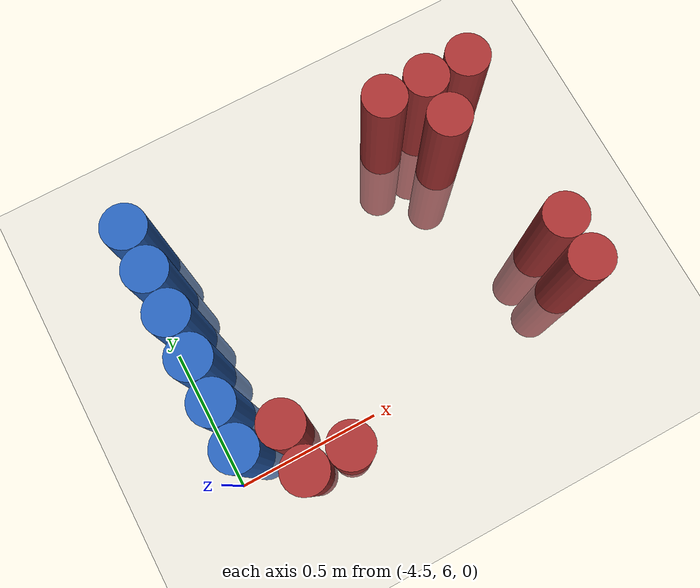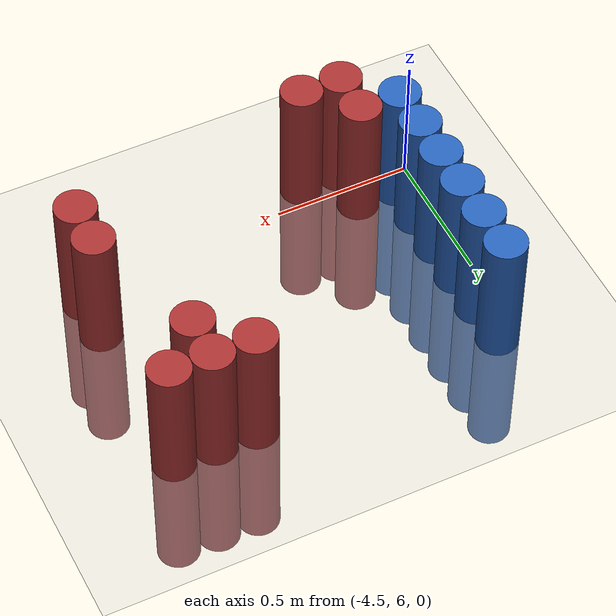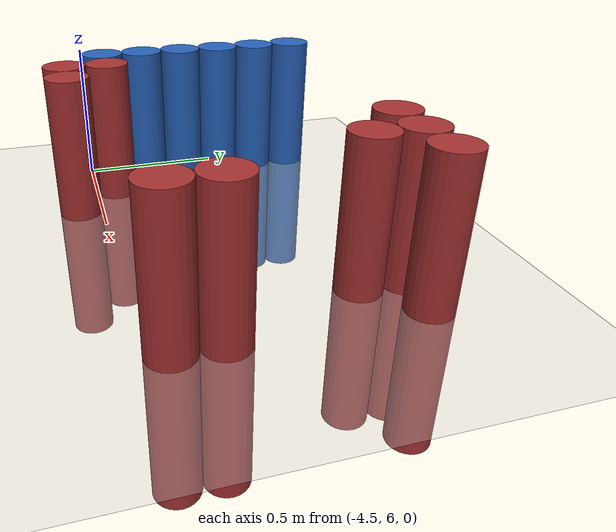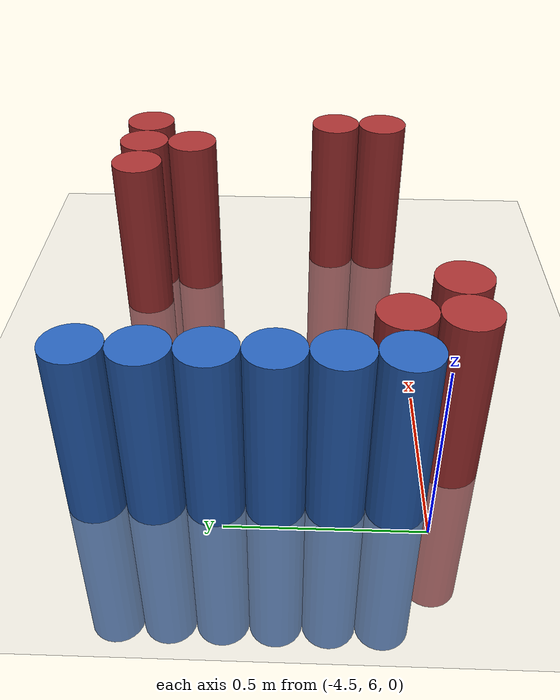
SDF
<sdf version="1.6">
 <world name="default">
  <model name="ground_plane">
   <static>1</static>
   <link name="link">
    <collision name="collision">
     <geometry><plane><normal>0 0 1</normal><size>100 100</size></plane></geometry>
     <surface><friction><ode><mu>100</mu><mu2>50</mu2></ode></friction></surface>
    </collision>
    <visual name="visual">
     <cast_shadows>0</cast_shadows>
     <geometry><plane><normal>0 0 1</normal><size>100 100</size></plane></geometry>
     <material>
      <script><uri>file://media/materials/scripts/gazebo.material</uri><name>Gazebo/Grey</name></script>
     </material>
    </visual>
   </link>
  </model>
  <model name="unit_cylinder_102">
   <static>1</static>
   <pose>-4.425000 6.075000 0.000000 0.000000 0.000000 0.000000</pose>
   <link name="link">
    <inertial>
     <mass>1</mass>
     <inertia><ixx>0.145833</ixx><ixy>0</ixy><ixz>0</ixz><iyy>0.145833</iyy><iyz>0</iyz><izz>0.125</izz></inertia>
    </inertial>
    <collision name="collision">
     <geometry><cylinder><radius>0.075000</radius><length>1</length></cylinder></geometry>
    </collision>
    <visual name="visual">
     <geometry><cylinder><radius>0.075000</radius><length>1</length></cylinder></geometry>
     <material>
      <ambient>0.152000 0.379000 0.720000 1</ambient>
      <diffuse>0.152000 0.379000 0.720000 1</diffuse>
     </material>
     <material>
      <script><name>Gazebo/Grey</name><uri>file://media/materials/scripts/gazebo.material</uri></script>
     </material>
    </visual>
   </link>
  </model>
  <model name="unit_cylinder_103">
   <static>1</static>
   <pose>-4.425000 6.225000 0.000000 0.000000 0.000000 0.000000</pose>
   <link name="link">
    <inertial>
     <mass>1</mass>
     <inertia><ixx>0.145833</ixx><ixy>0</ixy><ixz>0</ixz><iyy>0.145833</iyy><iyz>0</iyz><izz>0.125</izz></inertia>
    </inertial>
    <collision name="collision">
     <geometry><cylinder><radius>0.075000</radius><length>1</length></cylinder></geometry>
    </collision>
    <visual name="visual">
     <geometry><cylinder><radius>0.075000</radius><length>1</length></cylinder></geometry>
     <material>
      <ambient>0.152000 0.379000 0.720000 1</ambient>
      <diffuse>0.152000 0.379000 0.720000 1</diffuse>
     </material>
     <material>
      <script><name>Gazebo/Grey</name><uri>file://media/materials/scripts/gazebo.material</uri></script>
     </material>
    </visual>
   </link>
  </model>
  <model name="unit_cylinder_104">
   <static>1</static>
   <pose>-4.425000 6.375000 0.000000 0.000000 0.000000 0.000000</pose>
   <link name="link">
    <inertial>
     <mass>1</mass>
     <inertia><ixx>0.145833</ixx><ixy>0</ixy><ixz>0</ixz><iyy>0.145833</iyy><iyz>0</iyz><izz>0.125</izz></inertia>
    </inertial>
    <collision name="collision">
     <geometry><cylinder><radius>0.075000</radius><length>1</length></cylinder></geometry>
    </collision>
    <visual name="visual">
     <geometry><cylinder><radius>0.075000</radius><length>1</length></cylinder></geometry>
     <material>
      <ambient>0.152000 0.379000 0.720000 1</ambient>
      <diffuse>0.152000 0.379000 0.720000 1</diffuse>
     </material>
     <material>
      <script><name>Gazebo/Grey</name><uri>file://media/materials/scripts/gazebo.material</uri></script>
     </material>
    </visual>
   </link>
  </model>
  <model name="unit_cylinder_105">
   <static>1</static>
   <pose>-4.425000 6.525000 0.000000 0.000000 0.000000 0.000000</pose>
   <link name="link">
    <inertial>
     <mass>1</mass>
     <inertia><ixx>0.145833</ixx><ixy>0</ixy><ixz>0</ixz><iyy>0.145833</iyy><iyz>0</iyz><izz>0.125</izz></inertia>
    </inertial>
    <collision name="collision">
     <geometry><cylinder><radius>0.075000</radius><length>1</length></cylinder></geometry>
    </collision>
    <visual name="visual">
     <geometry><cylinder><radius>0.075000</radius><length>1</length></cylinder></geometry>
     <material>
      <ambient>0.152000 0.379000 0.720000 1</ambient>
      <diffuse>0.152000 0.379000 0.720000 1</diffuse>
     </material>
     <material>
      <script><name>Gazebo/Grey</name><uri>file://media/materials/scripts/gazebo.material</uri></script>
     </material>
    </visual>
   </link>
  </model>
  <model name="unit_cylinder_106">
   <static>1</static>
   <pose>-4.425000 6.675000 0.000000 0.000000 0.000000 0.000000</pose>
   <link name="link">
    <inertial>
     <mass>1</mass>
     <inertia><ixx>0.145833</ixx><ixy>0</ixy><ixz>0</ixz><iyy>0.145833</iyy><iyz>0</iyz><izz>0.125</izz></inertia>
    </inertial>
    <collision name="collision">
     <geometry><cylinder><radius>0.075000</radius><length>1</length></cylinder></geometry>
    </collision>
    <visual name="visual">
     <geometry><cylinder><radius>0.075000</radius><length>1</length></cylinder></geometry>
     <material>
      <ambient>0.152000 0.379000 0.720000 1</ambient>
      <diffuse>0.152000 0.379000 0.720000 1</diffuse>
     </material>
     <material>
      <script><name>Gazebo/Grey</name><uri>file://media/materials/scripts/gazebo.material</uri></script>
     </material>
    </visual>
   </link>
  </model>
  <model name="unit_cylinder_107">
   <static>1</static>
   <pose>-4.425000 6.825000 0.000000 0.000000 0.000000 0.000000</pose>
   <link name="link">
    <inertial>
     <mass>1</mass>
     <inertia><ixx>0.145833</ixx><ixy>0</ixy><ixz>0</ixz><iyy>0.145833</iyy><iyz>0</iyz><izz>0.125</izz></inertia>
    </inertial>
    <collision name="collision">
     <geometry><cylinder><radius>0.075000</radius><length>1</length></cylinder></geometry>
    </collision>
    <visual name="visual">
     <geometry><cylinder><radius>0.075000</radius><length>1</length></cylinder></geometry>
     <material>
      <ambient>0.152000 0.379000 0.720000 1</ambient>
      <diffuse>0.152000 0.379000 0.720000 1</diffuse>
     </material>
     <material>
      <script><name>Gazebo/Grey</name><uri>file://media/materials/scripts/gazebo.material</uri></script>
     </material>
    </visual>
   </link>
  </model>
  <model name="unit_cylinder_128">
   <static>1</static>
   <pose>-4.275000 5.925000 0.000000 0.000000 0.000000 0.000000</pose>
   <link name="link">
    <inertial>
     <mass>1</mass>
     <inertia><ixx>0.145833</ixx><ixy>0</ixy><ixz>0</ixz><iyy>0.145833</iyy><iyz>0</iyz><izz>0.125</izz></inertia>
    </inertial>
    <collision name="collision">
     <geometry><cylinder><radius>0.075000</radius><length>1</length></cylinder></geometry>
    </collision>
    <visual name="visual">
     <geometry><cylinder><radius>0.075000</radius><length>1</length></cylinder></geometry>
     <material>
      <ambient>0.648000 0.192000 0.192000 1</ambient>
      <diffuse>0.648000 0.192000 0.192000 1</diffuse>
     </material>
     <material>
      <script><name>Gazebo/Grey</name><uri>file://media/materials/scripts/gazebo.material</uri></script>
     </material>
    </visual>
   </link>
  </model>
  <model name="unit_cylinder_129">
   <static>1</static>
   <pose>-4.275000 6.075000 0.000000 0.000000 0.000000 0.000000</pose>
   <link name="link">
    <inertial>
     <mass>1</mass>
     <inertia><ixx>0.145833</ixx><ixy>0</ixy><ixz>0</ixz><iyy>0.145833</iyy><iyz>0</iyz><izz>0.125</izz></inertia>
    </inertial>
    <collision name="collision">
     <geometry><cylinder><radius>0.075000</radius><length>1</length></cylinder></geometry>
    </collision>
    <visual name="visual">
     <geometry><cylinder><radius>0.075000</radius><length>1</length></cylinder></geometry>
     <material>
      <ambient>0.648000 0.192000 0.192000 1</ambient>
      <diffuse>0.648000 0.192000 0.192000 1</diffuse>
     </material>
     <material>
      <script><name>Gazebo/Grey</name><uri>file://media/materials/scripts/gazebo.material</uri></script>
     </material>
    </visual>
   </link>
  </model>
  <model name="unit_cylinder_136">
   <static>1</static>
   <pose>-4.125000 5.925000 0.000000 0.000000 0.000000 0.000000</pose>
   <link name="link">
    <inertial>
     <mass>1</mass>
     <inertia><ixx>0.145833</ixx><ixy>0</ixy><ixz>0</ixz><iyy>0.145833</iyy><iyz>0</iyz><izz>0.125</izz></inertia>
    </inertial>
    <collision name="collision">
     <geometry><cylinder><radius>0.075000</radius><length>1</length></cylinder></geometry>
    </collision>
    <visual name="visual">
     <geometry><cylinder><radius>0.075000</radius><length>1</length></cylinder></geometry>
     <material>
      <ambient>0.648000 0.192000 0.192000 1</ambient>
      <diffuse>0.648000 0.192000 0.192000 1</diffuse>
     </material>
     <material>
      <script><name>Gazebo/Grey</name><uri>file://media/materials/scripts/gazebo.material</uri></script>
     </material>
    </visual>
   </link>
  </model>
  <model name="unit_cylinder_157">
   <static>1</static>
   <pose>-3.525000 6.825000 0.000000 0.000000 0.000000 0.000000</pose>
   <link name="link">
    <inertial>
     <mass>1</mass>
     <inertia><ixx>0.145833</ixx><ixy>0</ixy><ixz>0</ixz><iyy>0.145833</iyy><iyz>0</iyz><izz>0.125</izz></inertia>
    </inertial>
    <collision name="collision">
     <geometry><cylinder><radius>0.075000</radius><length>1</length></cylinder></geometry>
    </collision>
    <visual name="visual">
     <geometry><cylinder><radius>0.075000</radius><length>1</length></cylinder></geometry>
     <material>
      <ambient>0.648000 0.192000 0.192000 1</ambient>
      <diffuse>0.648000 0.192000 0.192000 1</diffuse>
     </material>
     <material>
      <script><name>Gazebo/Grey</name><uri>file://media/materials/scripts/gazebo.material</uri></script>
     </material>
    </visual>
   </link>
  </model>
  <model name="unit_cylinder_165">
   <static>1</static>
   <pose>-3.375000 6.675000 0.000000 0.000000 0.000000 0.000000</pose>
   <link name="link">
    <inertial>
     <mass>1</mass>
     <inertia><ixx>0.145833</ixx><ixy>0</ixy><ixz>0</ixz><iyy>0.145833</iyy><iyz>0</iyz><izz>0.125</izz></inertia>
    </inertial>
    <collision name="collision">
     <geometry><cylinder><radius>0.075000</radius><length>1</length></cylinder></geometry>
    </collision>
    <visual name="visual">
     <geometry><cylinder><radius>0.075000</radius><length>1</length></cylinder></geometry>
     <material>
      <ambient>0.648000 0.192000 0.192000 1</ambient>
      <diffuse>0.648000 0.192000 0.192000 1</diffuse>
     </material>
     <material>
      <script><name>Gazebo/Grey</name><uri>file://media/materials/scripts/gazebo.material</uri></script>
     </material>
    </visual>
   </link>
  </model>
  <model name="unit_cylinder_166">
   <static>1</static>
   <pose>-3.375000 6.825000 0.000000 0.000000 0.000000 0.000000</pose>
   <link name="link">
    <inertial>
     <mass>1</mass>
     <inertia><ixx>0.145833</ixx><ixy>0</ixy><ixz>0</ixz><iyy>0.145833</iyy><iyz>0</iyz><izz>0.125</izz></inertia>
    </inertial>
    <collision name="collision">
     <geometry><cylinder><radius>0.075000</radius><length>1</length></cylinder></geometry>
    </collision>
    <visual name="visual">
     <geometry><cylinder><radius>0.075000</radius><length>1</length></cylinder></geometry>
     <material>
      <ambient>0.648000 0.192000 0.192000 1</ambient>
      <diffuse>0.648000 0.192000 0.192000 1</diffuse>
     </material>
     <material>
      <script><name>Gazebo/Grey</name><uri>file://media/materials/scripts/gazebo.material</uri></script>
     </material>
    </visual>
   </link>
  </model>
  <model name="unit_cylinder_171">
   <static>1</static>
   <pose>-3.225000 6.075000 0.000000 0.000000 0.000000 0.000000</pose>
   <link name="link">
    <inertial>
     <mass>1</mass>
     <inertia><ixx>0.145833</ixx><ixy>0</ixy><ixz>0</ixz><iyy>0.145833</iyy><iyz>0</iyz><izz>0.125</izz></inertia>
    </inertial>
    <collision name="collision">
     <geometry><cylinder><radius>0.075000</radius><length>1</length></cylinder></geometry>
    </collision>
    <visual name="visual">
     <geometry><cylinder><radius>0.075000</radius><length>1</length></cylinder></geometry>
     <material>
      <ambient>0.648000 0.192000 0.192000 1</ambient>
      <diffuse>0.648000 0.192000 0.192000 1</diffuse>
     </material>
     <material>
      <script><name>Gazebo/Grey</name><uri>file://media/materials/scripts/gazebo.material</uri></script>
     </material>
    </visual>
   </link>
  </model>
  <model name="unit_cylinder_172">
   <static>1</static>
   <pose>-3.225000 6.225000 0.000000 0.000000 0.000000 0.000000</pose>
   <link name="link">
    <inertial>
     <mass>1</mass>
     <inertia><ixx>0.145833</ixx><ixy>0</ixy><ixz>0</ixz><iyy>0.145833</iyy><iyz>0</iyz><izz>0.125</izz></inertia>
    </inertial>
    <collision name="collision">
     <geometry><cylinder><radius>0.075000</radius><length>1</length></cylinder></geometry>
    </collision>
    <visual name="visual">
     <geometry><cylinder><radius>0.075000</radius><length>1</length></cylinder></geometry>
     <material>
      <ambient>0.648000 0.192000 0.192000 1</ambient>
      <diffuse>0.648000 0.192000 0.192000 1</diffuse>
     </material>
     <material>
      <script><name>Gazebo/Grey</name><uri>file://media/materials/scripts/gazebo.material</uri></script>
     </material>
    </visual>
   </link>
  </model>
  <model name="unit_cylinder_173">
   <static>1</static>
   <pose>-3.225000 6.825000 0.000000 0.000000 0.000000 0.000000</pose>
   <link name="link">
    <inertial>
     <mass>1</mass>
     <inertia><ixx>0.145833</ixx><ixy>0</ixy><ixz>0</ixz><iyy>0.145833</iyy><iyz>0</iyz><izz>0.125</izz></inertia>
    </inertial>
    <collision name="collision">
     <geometry><cylinder><radius>0.075000</radius><length>1</length></cylinder></geometry>
    </collision>
    <visual name="visual">
     <geometry><cylinder><radius>0.075000</radius><length>1</length></cylinder></geometry>
     <material>
      <ambient>0.648000 0.192000 0.192000 1</ambient>
      <diffuse>0.648000 0.192000 0.192000 1</diffuse>
     </material>
     <material>
      <script><name>Gazebo/Grey</name><uri>file://media/materials/scripts/gazebo.material</uri></script>
     </material>
    </visual>
   </link>
  </model>
 </world>
</sdf>
